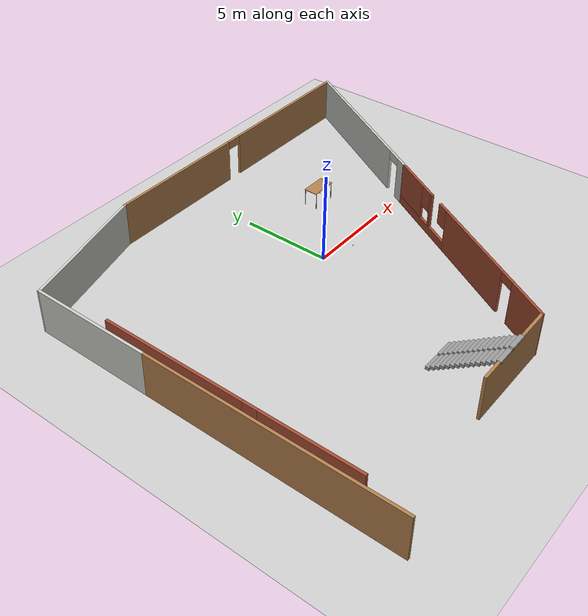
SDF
<sdf version="1.7">
 <world name="default">
  <light name="sun" type="directional">
   <pose>0 0 10 0 -0 0</pose>
   <diffuse>0.8 0.8 0.8 1</diffuse>
   <specular>0.2 0.2 0.2 1</specular>
   <attenuation>
    <range>1000</range>
    <constant>0.9</constant>
    <linear>0.01</linear>
    <quadratic>0.001</quadratic>
   </attenuation>
   <direction>-0.5 0.1 -0.9</direction>
   <spot><inner_angle>0</inner_angle><outer_angle>0</outer_angle><falloff>0</falloff></spot>
  </light>
  <model name="ground_plane">
   <static>1</static>
   <link name="link">
    <collision name="collision">
     <geometry><plane><normal>0 0 1</normal><size>100 100</size></plane></geometry>
     <surface>
      <contact><collide_bitmask>65535</collide_bitmask></contact>
      <friction><ode><mu>100</mu><mu2>50</mu2></ode></friction>
     </surface>
    </collision>
    <visual name="visual">
     <cast_shadows>0</cast_shadows>
     <geometry><plane><normal>0 0 1</normal><size>100 100</size></plane></geometry>
     <material>
      <script><uri>file://media/materials/scripts/gazebo.material</uri><name>Gazebo/Grey</name></script>
     </material>
    </visual>
   </link>
  </model>
  <gravity>0 0 -9.8</gravity>
  <magnetic_field>6e-06 2.3e-05 -4.2e-05</magnetic_field>
  <atmosphere type="adiabatic"/>
  <physics type="ode">
   <max_step_size>0.001</max_step_size>
   <real_time_factor>1</real_time_factor>
   <real_time_update_rate>1000</real_time_update_rate>
  </physics>
  <scene><ambient>0.4 0.4 0.4 1</ambient><background>0.7 0.7 0.7 1</background><shadows>1</shadows></scene>
  <audio><device>default</device></audio>
  <spherical_coordinates>
   <surface_model>EARTH_WGS84</surface_model>
   <latitude_deg>0</latitude_deg>
   <longitude_deg>0</longitude_deg>
   <elevation>0</elevation>
   <heading_deg>0</heading_deg>
  </spherical_coordinates>
  <model name="sample_world">
   <pose>-0.285677 -2.23554 0 0 -0 0</pose>
   <link name="Stairs_2">
    <visual name="Stairs_2_Visual_0">
     <pose>-1.84512 -6.3658 0.083333 0 -0 0</pose>
     <geometry><box><size>1 0.233333 0.166667</size></box></geometry>
     <material>
      <script><uri>file://media/materials/scripts/gazebo.material</uri><name>Gazebo/Grey</name></script>
      <ambient>1 1 1 1</ambient>
     </material>
     <meta><layer>0</layer></meta>
    </visual>
    <collision name="Stairs_2_Collision_0">
     <geometry><box><size>1 0.233333 0.166667</size></box></geometry>
     <pose>-1.84512 -6.3658 0.083333 0 -0 0</pose>
    </collision>
    <visual name="Stairs_2_Visual_1">
     <pose>-1.84512 -6.59913 0.25 0 -0 0</pose>
     <geometry><box><size>1 0.233333 0.166667</size></box></geometry>
     <material>
      <script><uri>file://media/materials/scripts/gazebo.material</uri><name>Gazebo/Grey</name></script>
      <ambient>1 1 1 1</ambient>
     </material>
     <meta><layer>0</layer></meta>
    </visual>
    <collision name="Stairs_2_Collision_1">
     <geometry><box><size>1 0.233333 0.166667</size></box></geometry>
     <pose>-1.84512 -6.59913 0.25 0 -0 0</pose>
    </collision>
    <visual name="Stairs_2_Visual_2">
     <pose>-1.84512 -6.83246 0.416667 0 -0 0</pose>
     <geometry><box><size>1 0.233333 0.166667</size></box></geometry>
     <material>
      <script><uri>file://media/materials/scripts/gazebo.material</uri><name>Gazebo/Grey</name></script>
      <ambient>1 1 1 1</ambient>
     </material>
     <meta><layer>0</layer></meta>
    </visual>
    <collision name="Stairs_2_Collision_2">
     <geometry><box><size>1 0.233333 0.166667</size></box></geometry>
     <pose>-1.84512 -6.83246 0.416667 0 -0 0</pose>
    </collision>
    <visual name="Stairs_2_Visual_3">
     <pose>-1.84512 -7.0658 0.583333 0 -0 0</pose>
     <geometry><box><size>1 0.233333 0.166667</size></box></geometry>
     <material>
      <script><uri>file://media/materials/scripts/gazebo.material</uri><name>Gazebo/Grey</name></script>
      <ambient>1 1 1 1</ambient>
     </material>
     <meta><layer>0</layer></meta>
    </visual>
    <collision name="Stairs_2_Collision_3">
     <geometry><box><size>1 0.233333 0.166667</size></box></geometry>
     <pose>-1.84512 -7.0658 0.583333 0 -0 0</pose>
    </collision>
    <visual name="Stairs_2_Visual_4">
     <pose>-1.84512 -7.29913 0.75 0 -0 0</pose>
     <geometry><box><size>1 0.233333 0.166667</size></box></geometry>
     <material>
      <script><uri>file://media/materials/scripts/gazebo.material</uri><name>Gazebo/Grey</name></script>
      <ambient>1 1 1 1</ambient>
     </material>
     <meta><layer>0</layer></meta>
    </visual>
    <collision name="Stairs_2_Collision_4">
     <geometry><box><size>1 0.233333 0.166667</size></box></geometry>
     <pose>-1.84512 -7.29913 0.75 0 -0 0</pose>
    </collision>
    <visual name="Stairs_2_Visual_5">
     <pose>-1.84512 -7.53247 0.916667 0 -0 0</pose>
     <geometry><box><size>1 0.233333 0.166667</size></box></geometry>
     <material>
      <script><uri>file://media/materials/scripts/gazebo.material</uri><name>Gazebo/Grey</name></script>
      <ambient>1 1 1 1</ambient>
     </material>
     <meta><layer>0</layer></meta>
    </visual>
    <collision name="Stairs_2_Collision_5">
     <geometry><box><size>1 0.233333 0.166667</size></box></geometry>
     <pose>-1.84512 -7.53247 0.916667 0 -0 0</pose>
    </collision>
    <visual name="Stairs_2_Visual_6">
     <pose>-1.84512 -7.7658 1.08333 0 -0 0</pose>
     <geometry><box><size>1 0.233333 0.166667</size></box></geometry>
     <material>
      <script><uri>file://media/materials/scripts/gazebo.material</uri><name>Gazebo/Grey</name></script>
      <ambient>1 1 1 1</ambient>
     </material>
     <meta><layer>0</layer></meta>
    </visual>
    <collision name="Stairs_2_Collision_6">
     <geometry><box><size>1 0.233333 0.166667</size></box></geometry>
     <pose>-1.84512 -7.7658 1.08333 0 -0 0</pose>
    </collision>
    <visual name="Stairs_2_Visual_7">
     <pose>-1.84512 -7.99913 1.25 0 -0 0</pose>
     <geometry><box><size>1 0.233333 0.166667</size></box></geometry>
     <material>
      <script><uri>file://media/materials/scripts/gazebo.material</uri><name>Gazebo/Grey</name></script>
      <ambient>1 1 1 1</ambient>
     </material>
     <meta><layer>0</layer></meta>
    </visual>
    <collision name="Stairs_2_Collision_7">
     <geometry><box><size>1 0.233333 0.166667</size></box></geometry>
     <pose>-1.84512 -7.99913 1.25 0 -0 0</pose>
    </collision>
    <visual name="Stairs_2_Visual_8">
     <pose>-1.84512 -8.23246 1.41667 0 -0 0</pose>
     <geometry><box><size>1 0.233333 0.166667</size></box></geometry>
     <material>
      <script><uri>file://media/materials/scripts/gazebo.material</uri><name>Gazebo/Grey</name></script>
      <ambient>1 1 1 1</ambient>
     </material>
     <meta><layer>0</layer></meta>
    </visual>
    <collision name="Stairs_2_Collision_8">
     <geometry><box><size>1 0.233333 0.166667</size></box></geometry>
     <pose>-1.84512 -8.23246 1.41667 0 -0 0</pose>
    </collision>
    <visual name="Stairs_2_Visual_9">
     <pose>-1.84512 -8.4658 1.58333 0 -0 0</pose>
     <geometry><box><size>1 0.233333 0.166667</size></box></geometry>
     <material>
      <script><uri>file://media/materials/scripts/gazebo.material</uri><name>Gazebo/Grey</name></script>
      <ambient>1 1 1 1</ambient>
     </material>
     <meta><layer>0</layer></meta>
    </visual>
    <collision name="Stairs_2_Collision_9">
     <geometry><box><size>1 0.233333 0.166667</size></box></geometry>
     <pose>-1.84512 -8.4658 1.58333 0 -0 0</pose>
    </collision>
    <visual name="Stairs_2_Visual_10">
     <pose>-1.84512 -8.69913 1.75 0 -0 0</pose>
     <geometry><box><size>1 0.233333 0.166667</size></box></geometry>
     <material>
      <script><uri>file://media/materials/scripts/gazebo.material</uri><name>Gazebo/Grey</name></script>
      <ambient>1 1 1 1</ambient>
     </material>
     <meta><layer>0</layer></meta>
    </visual>
    <collision name="Stairs_2_Collision_10">
     <geometry><box><size>1 0.233333 0.166667</size></box></geometry>
     <pose>-1.84512 -8.69913 1.75 0 -0 0</pose>
    </collision>
    <visual name="Stairs_2_Visual_11">
     <pose>-1.84512 -8.93247 1.91667 0 -0 0</pose>
     <geometry><box><size>1 0.233333 0.166667</size></box></geometry>
     <material>
      <script><uri>file://media/materials/scripts/gazebo.material</uri><name>Gazebo/Grey</name></script>
      <ambient>1 1 1 1</ambient>
     </material>
     <meta><layer>0</layer></meta>
    </visual>
    <collision name="Stairs_2_Collision_11">
     <geometry><box><size>1 0.233333 0.166667</size></box></geometry>
     <pose>-1.84512 -8.93247 1.91667 0 -0 0</pose>
    </collision>
    <visual name="Stairs_2_Visual_12">
     <pose>-1.84512 -9.1658 2.08333 0 -0 0</pose>
     <geometry><box><size>1 0.233333 0.166667</size></box></geometry>
     <material>
      <script><uri>file://media/materials/scripts/gazebo.material</uri><name>Gazebo/Grey</name></script>
      <ambient>1 1 1 1</ambient>
     </material>
     <meta><layer>0</layer></meta>
    </visual>
    <collision name="Stairs_2_Collision_12">
     <geometry><box><size>1 0.233333 0.166667</size></box></geometry>
     <pose>-1.84512 -9.1658 2.08333 0 -0 0</pose>
    </collision>
    <visual name="Stairs_2_Visual_13">
     <pose>-1.84512 -9.39913 2.25 0 -0 0</pose>
     <geometry><box><size>1 0.233333 0.166667</size></box></geometry>
     <material>
      <script><uri>file://media/materials/scripts/gazebo.material</uri><name>Gazebo/Grey</name></script>
      <ambient>1 1 1 1</ambient>
     </material>
     <meta><layer>0</layer></meta>
    </visual>
    <collision name="Stairs_2_Collision_13">
     <geometry><box><size>1 0.233333 0.166667</size></box></geometry>
     <pose>-1.84512 -9.39913 2.25 0 -0 0</pose>
    </collision>
    <visual name="Stairs_2_Visual_14">
     <pose>-1.84512 -9.63246 2.41667 0 -0 0</pose>
     <geometry><box><size>1 0.233333 0.166667</size></box></geometry>
     <material>
      <script><uri>file://media/materials/scripts/gazebo.material</uri><name>Gazebo/Grey</name></script>
      <ambient>1 1 1 1</ambient>
     </material>
     <meta><layer>0</layer></meta>
    </visual>
    <collision name="Stairs_2_Collision_14">
     <geometry><box><size>1 0.233333 0.166667</size></box></geometry>
     <pose>-1.84512 -9.63246 2.41667 0 -0 0</pose>
    </collision>
   </link>
   <link name="Stairs_3">
    <visual name="Stairs_3_Visual_0">
     <pose>-2.9565 -6.37435 0.083333 0 -0 0</pose>
     <geometry><box><size>1 0.233333 0.166667</size></box></geometry>
     <material>
      <script><uri>file://media/materials/scripts/gazebo.material</uri><name>Gazebo/Grey</name></script>
      <ambient>1 1 1 1</ambient>
     </material>
     <meta><layer>0</layer></meta>
    </visual>
    <collision name="Stairs_3_Collision_0">
     <geometry><box><size>1 0.233333 0.166667</size></box></geometry>
     <pose>-2.9565 -6.37435 0.083333 0 -0 0</pose>
    </collision>
    <visual name="Stairs_3_Visual_1">
     <pose>-2.9565 -6.60769 0.25 0 -0 0</pose>
     <geometry><box><size>1 0.233333 0.166667</size></box></geometry>
     <material>
      <script><uri>file://media/materials/scripts/gazebo.material</uri><name>Gazebo/Grey</name></script>
      <ambient>1 1 1 1</ambient>
     </material>
     <meta><layer>0</layer></meta>
    </visual>
    <collision name="Stairs_3_Collision_1">
     <geometry><box><size>1 0.233333 0.166667</size></box></geometry>
     <pose>-2.9565 -6.60769 0.25 0 -0 0</pose>
    </collision>
    <visual name="Stairs_3_Visual_2">
     <pose>-2.9565 -6.84102 0.416667 0 -0 0</pose>
     <geometry><box><size>1 0.233333 0.166667</size></box></geometry>
     <material>
      <script><uri>file://media/materials/scripts/gazebo.material</uri><name>Gazebo/Grey</name></script>
      <ambient>1 1 1 1</ambient>
     </material>
     <meta><layer>0</layer></meta>
    </visual>
    <collision name="Stairs_3_Collision_2">
     <geometry><box><size>1 0.233333 0.166667</size></box></geometry>
     <pose>-2.9565 -6.84102 0.416667 0 -0 0</pose>
    </collision>
    <visual name="Stairs_3_Visual_3">
     <pose>-2.9565 -7.07435 0.583333 0 -0 0</pose>
     <geometry><box><size>1 0.233333 0.166667</size></box></geometry>
     <material>
      <script><uri>file://media/materials/scripts/gazebo.material</uri><name>Gazebo/Grey</name></script>
      <ambient>1 1 1 1</ambient>
     </material>
     <meta><layer>0</layer></meta>
    </visual>
    <collision name="Stairs_3_Collision_3">
     <geometry><box><size>1 0.233333 0.166667</size></box></geometry>
     <pose>-2.9565 -7.07435 0.583333 0 -0 0</pose>
    </collision>
    <visual name="Stairs_3_Visual_4">
     <pose>-2.9565 -7.30769 0.75 0 -0 0</pose>
     <geometry><box><size>1 0.233333 0.166667</size></box></geometry>
     <material>
      <script><uri>file://media/materials/scripts/gazebo.material</uri><name>Gazebo/Grey</name></script>
      <ambient>1 1 1 1</ambient>
     </material>
     <meta><layer>0</layer></meta>
    </visual>
    <collision name="Stairs_3_Collision_4">
     <geometry><box><size>1 0.233333 0.166667</size></box></geometry>
     <pose>-2.9565 -7.30769 0.75 0 -0 0</pose>
    </collision>
    <visual name="Stairs_3_Visual_5">
     <pose>-2.9565 -7.54102 0.916667 0 -0 0</pose>
     <geometry><box><size>1 0.233333 0.166667</size></box></geometry>
     <material>
      <script><uri>file://media/materials/scripts/gazebo.material</uri><name>Gazebo/Grey</name></script>
      <ambient>1 1 1 1</ambient>
     </material>
     <meta><layer>0</layer></meta>
    </visual>
    <collision name="Stairs_3_Collision_5">
     <geometry><box><size>1 0.233333 0.166667</size></box></geometry>
     <pose>-2.9565 -7.54102 0.916667 0 -0 0</pose>
    </collision>
    <visual name="Stairs_3_Visual_6">
     <pose>-2.9565 -7.77435 1.08333 0 -0 0</pose>
     <geometry><box><size>1 0.233333 0.166667</size></box></geometry>
     <material>
      <script><uri>file://media/materials/scripts/gazebo.material</uri><name>Gazebo/Grey</name></script>
      <ambient>1 1 1 1</ambient>
     </material>
     <meta><layer>0</layer></meta>
    </visual>
    <collision name="Stairs_3_Collision_6">
     <geometry><box><size>1 0.233333 0.166667</size></box></geometry>
     <pose>-2.9565 -7.77435 1.08333 0 -0 0</pose>
    </collision>
    <visual name="Stairs_3_Visual_7">
     <pose>-2.9565 -8.00769 1.25 0 -0 0</pose>
     <geometry><box><size>1 0.233333 0.166667</size></box></geometry>
     <material>
      <script><uri>file://media/materials/scripts/gazebo.material</uri><name>Gazebo/Grey</name></script>
      <ambient>1 1 1 1</ambient>
     </material>
     <meta><layer>0</layer></meta>
    </visual>
    <collision name="Stairs_3_Collision_7">
     <geometry><box><size>1 0.233333 0.166667</size></box></geometry>
     <pose>-2.9565 -8.00769 1.25 0 -0 0</pose>
    </collision>
    <visual name="Stairs_3_Visual_8">
     <pose>-2.9565 -8.24102 1.41667 0 -0 0</pose>
     <geometry><box><size>1 0.233333 0.166667</size></box></geometry>
     <material>
      <script><uri>file://media/materials/scripts/gazebo.material</uri><name>Gazebo/Grey</name></script>
      <ambient>1 1 1 1</ambient>
     </material>
     <meta><layer>0</layer></meta>
    </visual>
    <collision name="Stairs_3_Collision_8">
     <geometry><box><size>1 0.233333 0.166667</size></box></geometry>
     <pose>-2.9565 -8.24102 1.41667 0 -0 0</pose>
    </collision>
    <visual name="Stairs_3_Visual_9">
     <pose>-2.9565 -8.47435 1.58333 0 -0 0</pose>
     <geometry><box><size>1 0.233333 0.166667</size></box></geometry>
     <material>
      <script><uri>file://media/materials/scripts/gazebo.material</uri><name>Gazebo/Grey</name></script>
      <ambient>1 1 1 1</ambient>
     </material>
     <meta><layer>0</layer></meta>
    </visual>
    <collision name="Stairs_3_Collision_9">
     <geometry><box><size>1 0.233333 0.166667</size></box></geometry>
     <pose>-2.9565 -8.47435 1.58333 0 -0 0</pose>
    </collision>
    <visual name="Stairs_3_Visual_10">
     <pose>-2.9565 -8.70768 1.75 0 -0 0</pose>
     <geometry><box><size>1 0.233333 0.166667</size></box></geometry>
     <material>
      <script><uri>file://media/materials/scripts/gazebo.material</uri><name>Gazebo/Grey</name></script>
      <ambient>1 1 1 1</ambient>
     </material>
     <meta><layer>0</layer></meta>
    </visual>
    <collision name="Stairs_3_Collision_10">
     <geometry><box><size>1 0.233333 0.166667</size></box></geometry>
     <pose>-2.9565 -8.70768 1.75 0 -0 0</pose>
    </collision>
    <visual name="Stairs_3_Visual_11">
     <pose>-2.9565 -8.94102 1.91667 0 -0 0</pose>
     <geometry><box><size>1 0.233333 0.166667</size></box></geometry>
     <material>
      <script><uri>file://media/materials/scripts/gazebo.material</uri><name>Gazebo/Grey</name></script>
      <ambient>1 1 1 1</ambient>
     </material>
     <meta><layer>0</layer></meta>
    </visual>
    <collision name="Stairs_3_Collision_11">
     <geometry><box><size>1 0.233333 0.166667</size></box></geometry>
     <pose>-2.9565 -8.94102 1.91667 0 -0 0</pose>
    </collision>
    <visual name="Stairs_3_Visual_12">
     <pose>-2.9565 -9.17435 2.08333 0 -0 0</pose>
     <geometry><box><size>1 0.233333 0.166667</size></box></geometry>
     <material>
      <script><uri>file://media/materials/scripts/gazebo.material</uri><name>Gazebo/Grey</name></script>
      <ambient>1 1 1 1</ambient>
     </material>
     <meta><layer>0</layer></meta>
    </visual>
    <collision name="Stairs_3_Collision_12">
     <geometry><box><size>1 0.233333 0.166667</size></box></geometry>
     <pose>-2.9565 -9.17435 2.08333 0 -0 0</pose>
    </collision>
    <visual name="Stairs_3_Visual_13">
     <pose>-2.9565 -9.40769 2.25 0 -0 0</pose>
     <geometry><box><size>1 0.233333 0.166667</size></box></geometry>
     <material>
      <script><uri>file://media/materials/scripts/gazebo.material</uri><name>Gazebo/Grey</name></script>
      <ambient>1 1 1 1</ambient>
     </material>
     <meta><layer>0</layer></meta>
    </visual>
    <collision name="Stairs_3_Collision_13">
     <geometry><box><size>1 0.233333 0.166667</size></box></geometry>
     <pose>-2.9565 -9.40769 2.25 0 -0 0</pose>
    </collision>
    <visual name="Stairs_3_Visual_14">
     <pose>-2.9565 -9.64102 2.41667 0 -0 0</pose>
     <geometry><box><size>1 0.233333 0.166667</size></box></geometry>
     <material>
      <script><uri>file://media/materials/scripts/gazebo.material</uri><name>Gazebo/Grey</name></script>
      <ambient>1 1 1 1</ambient>
     </material>
     <meta><layer>0</layer></meta>
    </visual>
    <collision name="Stairs_3_Collision_14">
     <geometry><box><size>1 0.233333 0.166667</size></box></geometry>
     <pose>-2.9565 -9.64102 2.41667 0 -0 0</pose>
    </collision>
   </link>
   <link name="Wall_0">
    <pose>-11.9557 -1.77523 0 0 -0 1.5708</pose>
    <visual name="Wall_0_Visual_0">
     <pose>-4.36439 0 1.25 0 -0 0</pose>
     <geometry><box><size>5.27122 0.15 2.5</size></box></geometry>
     <material>
      <script><uri>file://media/materials/scripts/gazebo.material</uri><name>Gazebo/Bricks</name></script>
      <ambient>1 1 1 1</ambient>
     </material>
     <meta><layer>0</layer></meta>
    </visual>
    <collision name="Wall_0_Collision_0">
     <geometry><box><size>5.27122 0.15 2.5</size></box></geometry>
     <pose>-4.36439 0 1.25 0 -0 0</pose>
    </collision>
    <visual name="Wall_0_Visual_1">
     <pose>2.63561 0 0.25 0 -0 0</pose>
     <geometry><box><size>8.72878 0.15 0.5</size></box></geometry>
     <material>
      <script><uri>file://media/materials/scripts/gazebo.material</uri><name>Gazebo/Bricks</name></script>
      <ambient>1 1 1 1</ambient>
     </material>
     <meta><layer>0</layer></meta>
    </visual>
    <collision name="Wall_0_Collision_1">
     <geometry><box><size>8.72878 0.15 0.5</size></box></geometry>
     <pose>2.63561 0 0.25 0 -0 0</pose>
    </collision>
    <visual name="Wall_0_Visual_2">
     <pose>3.03561 0 1.5 0 -0 0</pose>
     <geometry><box><size>7.92878 0.15 2</size></box></geometry>
     <material>
      <script><uri>file://media/materials/scripts/gazebo.material</uri><name>Gazebo/Bricks</name></script>
      <ambient>1 1 1 1</ambient>
     </material>
     <meta><layer>0</layer></meta>
    </visual>
    <collision name="Wall_0_Collision_2">
     <geometry><box><size>7.92878 0.15 2</size></box></geometry>
     <pose>3.03561 0 1.5 0 -0 0</pose>
    </collision>
    <visual name="Wall_0_Visual_3">
     <pose>-1.32878 0 1.9 0 -0 0</pose>
     <geometry><box><size>0.8 0.15 1.2</size></box></geometry>
     <material>
      <script><uri>file://media/materials/scripts/gazebo.material</uri><name>Gazebo/Bricks</name></script>
      <ambient>1 1 1 1</ambient>
     </material>
     <meta><layer>0</layer></meta>
    </visual>
    <collision name="Wall_0_Collision_3">
     <geometry><box><size>0.8 0.15 1.2</size></box></geometry>
     <pose>-1.32878 0 1.9 0 -0 0</pose>
    </collision>
   </link>
   <link name="Wall_3">
    <collision name="Wall_3_Collision">
     <geometry><box><size>5.25 0.15 2.5</size></box></geometry>
     <pose>0 0 1.25 0 -0 0</pose>
    </collision>
    <visual name="Wall_3_Visual">
     <pose>0 0 1.25 0 -0 0</pose>
     <geometry><box><size>5.25 0.15 2.5</size></box></geometry>
     <material>
      <script><uri>file://media/materials/scripts/gazebo.material</uri><name>Gazebo/Wood</name></script>
      <ambient>1 1 1 1</ambient>
     </material>
     <meta><layer>0</layer></meta>
    </visual>
    <pose>-2.05978 -9.67152 0 0 -0 0</pose>
   </link>
   <link name="Wall_4">
    <pose>3.82772 -3.8908 0 0 -0 1.0472</pose>
    <visual name="Wall_4_Visual_0">
     <pose>-5.52374 0 1.25 0 -0 0</pose>
     <geometry><box><size>2.45252 0.15 2.5</size></box></geometry>
     <material>
      <script><uri>file://media/materials/scripts/gazebo.material</uri><name>Gazebo/Bricks</name></script>
      <ambient>1 1 1 1</ambient>
     </material>
     <meta><layer>0</layer></meta>
    </visual>
    <collision name="Wall_4_Collision_0">
     <geometry><box><size>2.45252 0.15 2.5</size></box></geometry>
     <pose>-5.52374 0 1.25 0 -0 0</pose>
    </collision>
    <visual name="Wall_4_Visual_1">
     <pose>-0.722601 0 1.25 0 -0 0</pose>
     <geometry><box><size>5.34975 0.15 2.5</size></box></geometry>
     <material>
      <script><uri>file://media/materials/scripts/gazebo.material</uri><name>Gazebo/Bricks</name></script>
      <ambient>1 1 1 1</ambient>
     </material>
     <meta><layer>0</layer></meta>
    </visual>
    <collision name="Wall_4_Collision_1">
     <geometry><box><size>5.34975 0.15 2.5</size></box></geometry>
     <pose>-0.722601 0 1.25 0 -0 0</pose>
    </collision>
    <visual name="Wall_4_Visual_2">
     <pose>4.35114 0 0.25 0 -0 0</pose>
     <geometry><box><size>4.79772 0.15 0.5</size></box></geometry>
     <material>
      <script><uri>file://media/materials/scripts/gazebo.material</uri><name>Gazebo/Bricks</name></script>
      <ambient>1 1 1 1</ambient>
     </material>
     <meta><layer>0</layer></meta>
    </visual>
    <collision name="Wall_4_Collision_2">
     <geometry><box><size>4.79772 0.15 0.5</size></box></geometry>
     <pose>4.35114 0 0.25 0 -0 0</pose>
    </collision>
    <visual name="Wall_4_Visual_3">
     <pose>3.55816 0 1.5 0 -0 0</pose>
     <geometry><box><size>0.191647 0.15 2</size></box></geometry>
     <material>
      <script><uri>file://media/materials/scripts/gazebo.material</uri><name>Gazebo/Bricks</name></script>
      <ambient>1 1 1 1</ambient>
     </material>
     <meta><layer>0</layer></meta>
    </visual>
    <collision name="Wall_4_Collision_3">
     <geometry><box><size>0.191647 0.15 2</size></box></geometry>
     <pose>3.55816 0 1.5 0 -0 0</pose>
    </collision>
    <visual name="Wall_4_Visual_4">
     <pose>5.60199 0 1.5 0 -0 0</pose>
     <geometry><box><size>2.29602 0.15 2</size></box></geometry>
     <material>
      <script><uri>file://media/materials/scripts/gazebo.material</uri><name>Gazebo/Bricks</name></script>
      <ambient>1 1 1 1</ambient>
     </material>
     <meta><layer>0</layer></meta>
    </visual>
    <collision name="Wall_4_Collision_4">
     <geometry><box><size>2.29602 0.15 2</size></box></geometry>
     <pose>5.60199 0 1.5 0 -0 0</pose>
    </collision>
    <visual name="Wall_4_Visual_5">
     <pose>2.3073 0 1.9 0 -0 0</pose>
     <geometry><box><size>0.710058 0.15 1.2</size></box></geometry>
     <material>
      <script><uri>file://media/materials/scripts/gazebo.material</uri><name>Gazebo/Bricks</name></script>
      <ambient>1 1 1 1</ambient>
     </material>
     <meta><layer>0</layer></meta>
    </visual>
    <collision name="Wall_4_Collision_5">
     <geometry><box><size>0.710058 0.15 1.2</size></box></geometry>
     <pose>2.3073 0 1.9 0 -0 0</pose>
    </collision>
    <visual name="Wall_4_Visual_6">
     <pose>4.05398 0 1.9 0 -0 0</pose>
     <geometry><box><size>0.8 0.15 1.2</size></box></geometry>
     <material>
      <script><uri>file://media/materials/scripts/gazebo.material</uri><name>Gazebo/Bricks</name></script>
      <ambient>1 1 1 1</ambient>
     </material>
     <meta><layer>0</layer></meta>
    </visual>
    <collision name="Wall_4_Collision_6">
     <geometry><box><size>0.8 0.15 1.2</size></box></geometry>
     <pose>4.05398 0 1.9 0 -0 0</pose>
    </collision>
    <visual name="Wall_4_Visual_7">
     <pose>-3.84748 0 2.25 0 -0 0</pose>
     <geometry><box><size>0.9 0.15 0.5</size></box></geometry>
     <material>
      <script><uri>file://media/materials/scripts/gazebo.material</uri><name>Gazebo/Bricks</name></script>
      <ambient>1 1 1 1</ambient>
     </material>
     <meta><layer>0</layer></meta>
    </visual>
    <collision name="Wall_4_Collision_7">
     <geometry><box><size>0.9 0.15 0.5</size></box></geometry>
     <pose>-3.84748 0 2.25 0 -0 0</pose>
    </collision>
   </link>
   <link name="Wall_5">
    <pose>9.81522 6.47985 0 0 -0 1.0472</pose>
    <visual name="Wall_5_Visual_0">
     <pose>-4.96026 0 1.25 0 -0 0</pose>
     <geometry><box><size>0.829476 0.15 2.5</size></box></geometry>
     <material>
      <script><uri>file://media/materials/scripts/gazebo.material</uri><name>Gazebo/CeilingTiled</name></script>
      <ambient>1 1 1 1</ambient>
     </material>
     <meta><layer>0</layer></meta>
    </visual>
    <collision name="Wall_5_Collision_0">
     <geometry><box><size>0.829476 0.15 2.5</size></box></geometry>
     <pose>-4.96026 0 1.25 0 -0 0</pose>
    </collision>
    <visual name="Wall_5_Visual_1">
     <pose>0.864738 0 1.25 0 -0 0</pose>
     <geometry><box><size>9.02052 0.15 2.5</size></box></geometry>
     <material>
      <script><uri>file://media/materials/scripts/gazebo.material</uri><name>Gazebo/CeilingTiled</name></script>
      <ambient>1 1 1 1</ambient>
     </material>
     <meta><layer>0</layer></meta>
    </visual>
    <collision name="Wall_5_Collision_1">
     <geometry><box><size>9.02052 0.15 2.5</size></box></geometry>
     <pose>0.864738 0 1.25 0 -0 0</pose>
    </collision>
    <visual name="Wall_5_Visual_2">
     <pose>-4.09552 0 2.25 0 -0 0</pose>
     <geometry><box><size>0.9 0.15 0.5</size></box></geometry>
     <material>
      <script><uri>file://media/materials/scripts/gazebo.material</uri><name>Gazebo/CeilingTiled</name></script>
      <ambient>1 1 1 1</ambient>
     </material>
     <meta><layer>0</layer></meta>
    </visual>
    <collision name="Wall_5_Collision_2">
     <geometry><box><size>0.9 0.15 0.5</size></box></geometry>
     <pose>-4.09552 0 2.25 0 -0 0</pose>
    </collision>
   </link>
   <link name="Wall_6">
    <pose>3.66522 11.0698 0 0 -0 3.14159</pose>
    <visual name="Wall_6_Visual_0">
     <pose>-4.54878 0 1.25 0 -0 0</pose>
     <geometry><box><size>8.65245 0.15 2.5</size></box></geometry>
     <material>
      <script><uri>file://media/materials/scripts/gazebo.material</uri><name>Gazebo/Wood</name></script>
      <ambient>1 1 1 1</ambient>
     </material>
     <meta><layer>0</layer></meta>
    </visual>
    <collision name="Wall_6_Collision_0">
     <geometry><box><size>8.65245 0.15 2.5</size></box></geometry>
     <pose>-4.54878 0 1.25 0 -0 0</pose>
    </collision>
    <visual name="Wall_6_Visual_1">
     <pose>4.77622 0 1.25 0 -0 0</pose>
     <geometry><box><size>8.19755 0.15 2.5</size></box></geometry>
     <material>
      <script><uri>file://media/materials/scripts/gazebo.material</uri><name>Gazebo/Wood</name></script>
      <ambient>1 1 1 1</ambient>
     </material>
     <meta><layer>0</layer></meta>
    </visual>
    <collision name="Wall_6_Collision_1">
     <geometry><box><size>8.19755 0.15 2.5</size></box></geometry>
     <pose>4.77622 0 1.25 0 -0 0</pose>
    </collision>
    <visual name="Wall_6_Visual_2">
     <pose>0.227446 0 2.25 0 -0 0</pose>
     <geometry><box><size>0.9 0.15 0.5</size></box></geometry>
     <material>
      <script><uri>file://media/materials/scripts/gazebo.material</uri><name>Gazebo/Wood</name></script>
      <ambient>1 1 1 1</ambient>
     </material>
     <meta><layer>0</layer></meta>
    </visual>
    <collision name="Wall_6_Collision_2">
     <geometry><box><size>0.9 0.15 0.5</size></box></geometry>
     <pose>0.227446 0 2.25 0 -0 0</pose>
    </collision>
   </link>
   <link name="Wall_7">
    <collision name="Wall_7_Collision">
     <geometry><box><size>7.75 0.15 2.5</size></box></geometry>
     <pose>0 0 1.25 0 -0 0</pose>
    </collision>
    <visual name="Wall_7_Visual">
     <pose>0 0 1.25 0 -0 0</pose>
     <geometry><box><size>7.75 0.15 2.5</size></box></geometry>
     <material>
      <script><uri>file://media/materials/scripts/gazebo.material</uri><name>Gazebo/CeilingTiled</name></script>
      <ambient>1 1 1 1</ambient>
     </material>
     <meta><layer>0</layer></meta>
    </visual>
    <pose>-8.8053 10.0863 0 0 -0 -2.87979</pose>
   </link>
   <link name="Wall_8">
    <collision name="Wall_8_Collision">
     <geometry><box><size>6.75 0.15 2.5</size></box></geometry>
     <pose>0 0 1.25 0 -0 0</pose>
    </collision>
    <visual name="Wall_8_Visual">
     <pose>0 0 1.25 0 -0 0</pose>
     <geometry><box><size>6.75 0.15 2.5</size></box></geometry>
     <material>
      <script><uri>file://media/materials/scripts/gazebo.material</uri><name>Gazebo/CeilingTiled</name></script>
      <ambient>1 1 1 1</ambient>
     </material>
     <meta><layer>0</layer></meta>
    </visual>
    <pose>-12.4758 5.80276 0 0 -0 -1.5708</pose>
   </link>
   <link name="Wall_9">
    <collision name="Wall_9_Collision">
     <geometry><box><size>13.75 0.15 2.5</size></box></geometry>
     <pose>0 0 1.25 0 -0 0</pose>
    </collision>
    <visual name="Wall_9_Visual">
     <pose>0 0 1.25 0 -0 0</pose>
     <geometry><box><size>13.75 0.15 2.5</size></box></geometry>
     <material>
      <script><uri>file://media/materials/scripts/gazebo.material</uri><name>Gazebo/Wood</name></script>
      <ambient>1 1 1 1</ambient>
     </material>
     <meta><layer>0</layer></meta>
    </visual>
    <pose>-12.4758 -4.29724 0 0 -0 -1.5708</pose>
   </link>
   <static>1</static>
  </model>
  <model name="table">
   <static>1</static>
   <link name="link">
    <collision name="surface">
     <pose>0 0 1 0 -0 0</pose>
     <geometry><box><size>1.5 0.8 0.03</size></box></geometry>
     <surface><friction><ode><mu>0.6</mu><mu2>0.6</mu2></ode></friction></surface>
    </collision>
    <visual name="visual1">
     <pose>0 0 1 0 -0 0</pose>
     <geometry><box><size>1.5 0.8 0.03</size></box></geometry>
     <material>
      <script><uri>file://media/materials/scripts/gazebo.material</uri><name>Gazebo/Wood</name></script>
     </material>
    </visual>
    <collision name="front_left_leg">
     <pose>0.68 0.38 0.5 0 -0 0</pose>
     <geometry><cylinder><radius>0.02</radius><length>1</length></cylinder></geometry>
    </collision>
    <visual name="front_left_leg">
     <pose>0.68 0.38 0.5 0 -0 0</pose>
     <geometry><cylinder><radius>0.02</radius><length>1</length></cylinder></geometry>
     <material>
      <script><uri>file://media/materials/scripts/gazebo.material</uri><name>Gazebo/Grey</name></script>
     </material>
    </visual>
    <collision name="front_right_leg">
     <pose>0.68 -0.38 0.5 0 -0 0</pose>
     <geometry><cylinder><radius>0.02</radius><length>1</length></cylinder></geometry>
    </collision>
    <visual name="front_right_leg">
     <pose>0.68 -0.38 0.5 0 -0 0</pose>
     <geometry><cylinder><radius>0.02</radius><length>1</length></cylinder></geometry>
     <material>
      <script><uri>file://media/materials/scripts/gazebo.material</uri><name>Gazebo/Grey</name></script>
     </material>
    </visual>
    <collision name="back_right_leg">
     <pose>-0.68 -0.38 0.5 0 -0 0</pose>
     <geometry><cylinder><radius>0.02</radius><length>1</length></cylinder></geometry>
    </collision>
    <visual name="back_right_leg">
     <pose>-0.68 -0.38 0.5 0 -0 0</pose>
     <geometry><cylinder><radius>0.02</radius><length>1</length></cylinder></geometry>
     <material>
      <script><uri>file://media/materials/scripts/gazebo.material</uri><name>Gazebo/Grey</name></script>
     </material>
    </visual>
    <collision name="back_left_leg">
     <pose>-0.68 0.38 0.5 0 -0 0</pose>
     <geometry><cylinder><radius>0.02</radius><length>1</length></cylinder></geometry>
    </collision>
    <visual name="back_left_leg">
     <pose>-0.68 0.38 0.5 0 -0 0</pose>
     <geometry><cylinder><radius>0.02</radius><length>1</length></cylinder></geometry>
     <material>
      <script><uri>file://media/materials/scripts/gazebo.material</uri><name>Gazebo/Grey</name></script>
     </material>
    </visual>
   </link>
   <pose>4.08559 3.4211 0 0 -0 0</pose>
  </model>
  <model name="wooden_peg">
   <link name="link">
    <pose>0 0 0.04 0 -0 0</pose>
    <inertial>
     <mass>0.0175</mass>
     <inertia>
      <ixx>9.74923e-06</ixx>
      <ixy>0</ixy>
      <ixz>0</ixz>
      <iyy>9.74923e-06</iyy>
      <iyz>0</iyz>
      <izz>8.31797e-07</izz>
     </inertia>
    </inertial>
    <collision name="collision">
     <geometry><cylinder><radius>0.00975</radius><length>0.08</length></cylinder></geometry>
     <surface>
      <contact>
       <poissons_ratio>0.347</poissons_ratio>
       <elastic_modulus>8.8e+09</elastic_modulus>
       <ode><kp>100000</kp><kd>100</kd><max_vel>100</max_vel><min_depth>0.001</min_depth></ode>
      </contact>
      <friction>
       <torsional>
        <coefficient>1</coefficient>
        <use_patch_radius>0</use_patch_radius>
        <surface_radius>0.01</surface_radius>
       </torsional>
      </friction>
     </surface>
    </collision>
    <visual name="visual">
     <geometry><cylinder><radius>0.00975</radius><length>0.08</length></cylinder></geometry>
     <material>
      <script><uri>file://media/materials/scripts/gazebo.material</uri><name>Gazebo/Wood</name></script>
     </material>
    </visual>
   </link>
   <pose>1.86071 -0.567481 -0.001 0 -0 0</pose>
  </model>
 </world>
</sdf>
